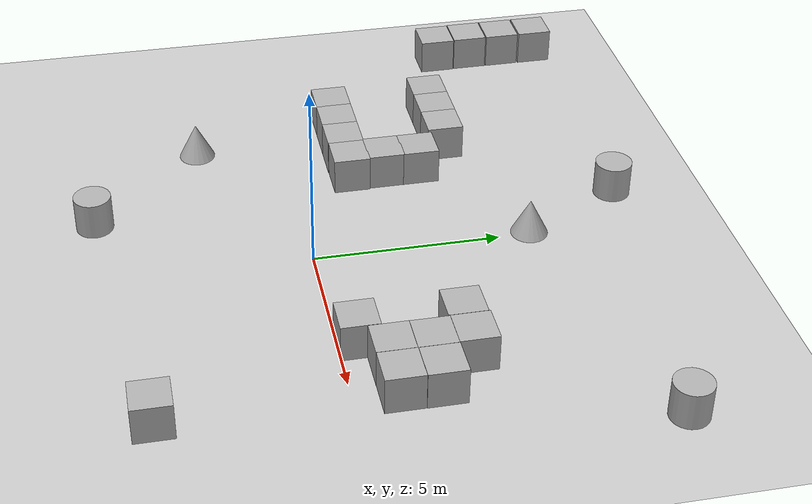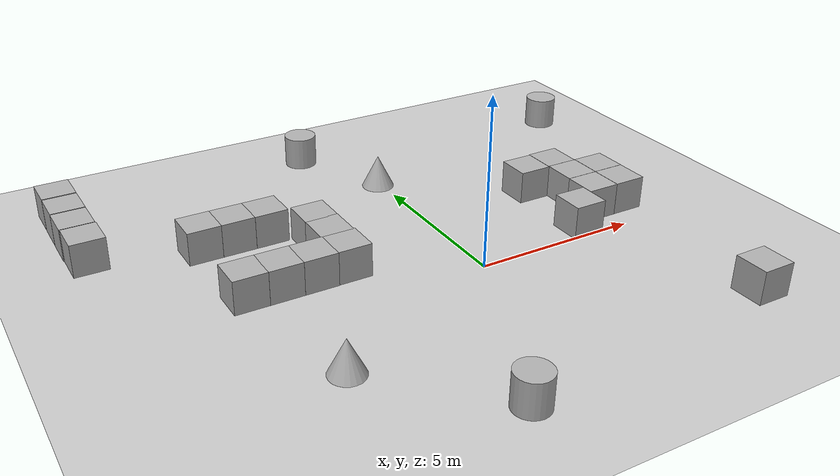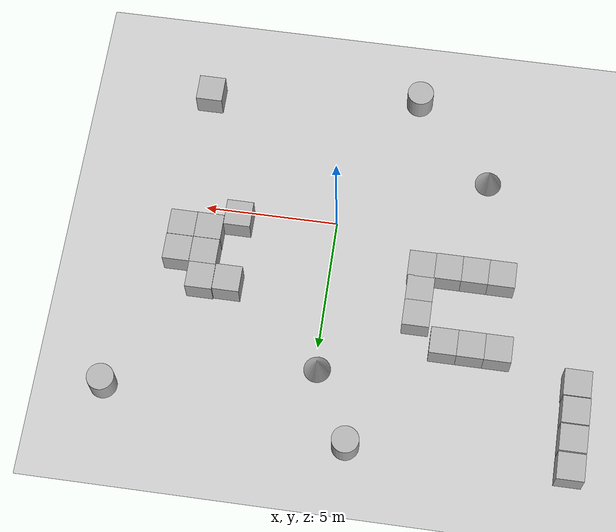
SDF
<sdf version='1.10'>
  <world name='empty'>
    <physics name='1ms' type='ignored'>
      <max_step_size>0.001</max_step_size>
      <real_time_factor>1</real_time_factor>
      <real_time_update_rate>1000</real_time_update_rate>
    </physics>

    <plugin
      filename="gz-sim-sensors-system"
      name="gz::sim::systems::Sensors">
      <render_engine>ogre2</render_engine>
    </plugin>

    <plugin
      filename="gz-sim-imu-system"
      name="gz::sim::systems::Imu">
    </plugin>

    <plugin name='gz::sim::systems::Physics' filename='gz-sim-physics-system'/>
    <plugin name='gz::sim::systems::UserCommands' filename='gz-sim-user-commands-system'/>
    <plugin name='gz::sim::systems::SceneBroadcaster' filename='gz-sim-scene-broadcaster-system'/>
    <plugin name='gz::sim::systems::Contact' filename='gz-sim-contact-system'/>
    <gravity>0 0 -9.8000000000000007</gravity>
    <magnetic_field>5.5644999999999998e-06 2.2875799999999999e-05 -4.2388400000000002e-05</magnetic_field>
    <atmosphere type='adiabatic'/>

    <scene>
      <ambient>0.400000006 0.400000006 0.400000006 1</ambient>
      <background>0.699999988 0.699999988 0.699999988 1</background>
      <shadows>true</shadows>
    </scene>
    <model name='ground_plane'>
      <static>true</static>
      <link name='link'>
        <collision name='collision'>
          <geometry>
            <plane>
              <normal>0 0 1</normal>
              <size>100 100</size>
            </plane>
          </geometry>
          <surface>
            <friction>
              <ode/>
            </friction>
            <bounce/>
            <contact/>
          </surface>
        </collision>
        <visual name='visual'>
          <geometry>
            <plane>
              <normal>0 0 1</normal>
              <size>100 100</size>
            </plane>
          </geometry>
          <material>
            <ambient>0.800000012 0.800000012 0.800000012 1</ambient>
            <diffuse>0.800000012 0.800000012 0.800000012 1</diffuse>
            <specular>0.800000012 0.800000012 0.800000012 1</specular>
          </material>
        </visual>
        <pose>0 0 0 0 0 0</pose>
        <inertial>
          <pose>0 0 0 0 0 0</pose>
          <mass>1</mass>
          <inertia>
            <ixx>1</ixx>
            <ixy>0</ixy>
            <ixz>0</ixz>
            <iyy>1</iyy>
            <iyz>0</iyz>
            <izz>1</izz>
          </inertia>
        </inertial>
        <enable_wind>false</enable_wind>
      </link>
      <pose>0 0 0 0 0 0</pose>
      <self_collide>false</self_collide>
    </model>
    <model name='box'>
      <pose>5.6495577485662576 1.1411248987016795 0.5 0 0 0</pose>
      <link name='box_link'>
        <inertial>
          <inertia>
            <ixx>0.16666</ixx>
            <ixy>0</ixy>
            <ixz>0</ixz>
            <iyy>0.16666</iyy>
            <iyz>0</iyz>
            <izz>0.16666</izz>
          </inertia>
          <mass>1</mass>
          <pose>0 0 0 0 0 0</pose>
        </inertial>
        <collision name='box_collision'>
          <geometry>
            <box>
              <size>1 1 1</size>
            </box>
          </geometry>
          <surface>
            <friction>
              <ode/>
            </friction>
            <bounce/>
            <contact/>
          </surface>
        </collision>
        <visual name='box_visual'>
          <geometry>
            <box>
              <size>1 1 1</size>
            </box>
          </geometry>
          <material>
            <ambient>0.300000012 0.300000012 0.300000012 1</ambient>
            <diffuse>0.699999988 0.699999988 0.699999988 1</diffuse>
            <specular>1 1 1 1</specular>
          </material>
        </visual>
        <pose>0 0 0 0 0 0</pose>
        <enable_wind>false</enable_wind>
      </link>
      <static>false</static>
      <self_collide>false</self_collide>
    </model>
    <model name='box_0'>
      <pose>5.5579663238386798 -4.6178165213168354 0.5 0 0 0</pose>
      <link name='box_link'>
        <inertial>
          <inertia>
            <ixx>0.16666</ixx>
            <ixy>0</ixy>
            <ixz>0</ixz>
            <iyy>0.16666</iyy>
            <iyz>0</iyz>
            <izz>0.16666</izz>
          </inertia>
          <mass>1</mass>
          <pose>0 0 0 0 0 0</pose>
        </inertial>
        <collision name='box_collision'>
          <geometry>
            <box>
              <size>1 1 1</size>
            </box>
          </geometry>
          <surface>
            <friction>
              <ode/>
            </friction>
            <bounce/>
            <contact/>
          </surface>
        </collision>
        <visual name='box_visual'>
          <geometry>
            <box>
              <size>1 1 1</size>
            </box>
          </geometry>
          <material>
            <ambient>0.300000012 0.300000012 0.300000012 1</ambient>
            <diffuse>0.699999988 0.699999988 0.699999988 1</diffuse>
            <specular>1 1 1 1</specular>
          </material>
        </visual>
        <pose>0 0 0 0 0 0</pose>
        <enable_wind>false</enable_wind>
      </link>
      <static>false</static>
      <self_collide>false</self_collide>
    </model>
    <model name='cone'>
      <pose>-0.092553137131737184 5.8529628609276942 0.5 0 0 0</pose>
      <link name='cone_link'>
        <inertial>
          <inertia>
            <ixx>0.074999999999999997</ixx>
            <ixy>0</ixy>
            <ixz>0</ixz>
            <iyy>0.074999999999999997</iyy>
            <iyz>0</iyz>
            <izz>0.074999999999999997</izz>
          </inertia>
          <mass>1</mass>
          <pose>0 0 0 0 0 0</pose>
        </inertial>
        <collision name='cone_collision'>
          <geometry>
            <cone>
              <radius>0.5</radius>
              <length>1</length>
            </cone>
          </geometry>
          <surface>
            <friction>
              <ode/>
            </friction>
            <bounce/>
            <contact/>
          </surface>
        </collision>
        <visual name='cone_visual'>
          <geometry>
            <cone>
              <radius>0.5</radius>
              <length>1</length>
            </cone>
          </geometry>
          <material>
            <ambient>0.300000012 0.300000012 0.300000012 1</ambient>
            <diffuse>0.699999988 0.699999988 0.699999988 1</diffuse>
            <specular>1 1 1 1</specular>
          </material>
        </visual>
        <pose>0 0 0 0 0 0</pose>
        <enable_wind>false</enable_wind>
      </link>
      <static>false</static>
      <self_collide>false</self_collide>
    </model>
    <model name='box_1'>
      <pose>4.6454767886542916 1.1373205098102854 0.5 0 0 0</pose>
      <link name='box_link'>
        <inertial>
          <inertia>
            <ixx>0.16666</ixx>
            <ixy>0</ixy>
            <ixz>0</ixz>
            <iyy>0.16666</iyy>
            <iyz>0</iyz>
            <izz>0.16666</izz>
          </inertia>
          <mass>1</mass>
          <pose>0 0 0 0 0 0</pose>
        </inertial>
        <collision name='box_collision'>
          <geometry>
            <box>
              <size>1 1 1</size>
            </box>
          </geometry>
          <surface>
            <friction>
              <ode/>
            </friction>
            <bounce/>
            <contact/>
          </surface>
        </collision>
        <visual name='box_visual'>
          <geometry>
            <box>
              <size>1 1 1</size>
            </box>
          </geometry>
          <material>
            <ambient>0.300000012 0.300000012 0.300000012 1</ambient>
            <diffuse>0.699999988 0.699999988 0.699999988 1</diffuse>
            <specular>1 1 1 1</specular>
          </material>
        </visual>
        <pose>0 0 0 0 0 0</pose>
        <enable_wind>false</enable_wind>
      </link>
      <static>false</static>
      <self_collide>false</self_collide>
    </model>
    <model name='box_2'>
      <pose>5.6564511481347264 2.145737704313742 0.5 0 0 0</pose>
      <link name='box_link'>
        <inertial>
          <inertia>
            <ixx>0.16666</ixx>
            <ixy>0</ixy>
            <ixz>0</ixz>
            <iyy>0.16666</iyy>
            <iyz>0</iyz>
            <izz>0.16666</izz>
          </inertia>
          <mass>1</mass>
          <pose>0 0 0 0 0 0</pose>
        </inertial>
        <collision name='box_collision'>
          <geometry>
            <box>
              <size>1 1 1</size>
            </box>
          </geometry>
          <surface>
            <friction>
              <ode/>
            </friction>
            <bounce/>
            <contact/>
          </surface>
        </collision>
        <visual name='box_visual'>
          <geometry>
            <box>
              <size>1 1 1</size>
            </box>
          </geometry>
          <material>
            <ambient>0.300000012 0.300000012 0.300000012 1</ambient>
            <diffuse>0.699999988 0.699999988 0.699999988 1</diffuse>
            <specular>1 1 1 1</specular>
          </material>
        </visual>
        <pose>0 0 0 0 0 0</pose>
        <enable_wind>false</enable_wind>
      </link>
      <static>false</static>
      <self_collide>false</self_collide>
    </model>
    <model name='box_3'>
      <pose>4.6525848246110106 2.1407320724627863 0.5 0 0 0</pose>
      <link name='box_link'>
        <inertial>
          <inertia>
            <ixx>0.16666</ixx>
            <ixy>0</ixy>
            <ixz>0</ixz>
            <iyy>0.16666</iyy>
            <iyz>0</iyz>
            <izz>0.16666</izz>
          </inertia>
          <mass>1</mass>
          <pose>0 0 0 0 0 0</pose>
        </inertial>
        <collision name='box_collision'>
          <geometry>
            <box>
              <size>1 1 1</size>
            </box>
          </geometry>
          <surface>
            <friction>
              <ode/>
            </friction>
            <bounce/>
            <contact/>
          </surface>
        </collision>
        <visual name='box_visual'>
          <geometry>
            <box>
              <size>1 1 1</size>
            </box>
          </geometry>
          <material>
            <ambient>0.300000012 0.300000012 0.300000012 1</ambient>
            <diffuse>0.699999988 0.699999988 0.699999988 1</diffuse>
            <specular>1 1 1 1</specular>
          </material>
        </visual>
        <pose>0 0 0 0 0 0</pose>
        <enable_wind>false</enable_wind>
      </link>
      <static>false</static>
      <self_collide>false</self_collide>
    </model>
    <model name='box_4'>
      <pose>4.6398629793233095 3.1416467684414733 0.5 0 0 0</pose>
      <link name='box_link'>
        <inertial>
          <inertia>
            <ixx>0.16666</ixx>
            <ixy>0</ixy>
            <ixz>0</ixz>
            <iyy>0.16666</iyy>
            <iyz>0</iyz>
            <izz>0.16666</izz>
          </inertia>
          <mass>1</mass>
          <pose>0 0 0 0 0 0</pose>
        </inertial>
        <collision name='box_collision'>
          <geometry>
            <box>
              <size>1 1 1</size>
            </box>
          </geometry>
          <surface>
            <friction>
              <ode/>
            </friction>
            <bounce/>
            <contact/>
          </surface>
        </collision>
        <visual name='box_visual'>
          <geometry>
            <box>
              <size>1 1 1</size>
            </box>
          </geometry>
          <material>
            <ambient>0.300000012 0.300000012 0.300000012 1</ambient>
            <diffuse>0.699999988 0.699999988 0.699999988 1</diffuse>
            <specular>1 1 1 1</specular>
          </material>
        </visual>
        <pose>0 0 0 0 0 0</pose>
        <enable_wind>false</enable_wind>
      </link>
      <static>false</static>
      <self_collide>false</self_collide>
    </model>
    <model name='box_5'>
      <pose>3.6340146009268897 3.1054140630819882 0.5 0 0 0</pose>
      <link name='box_link'>
        <inertial>
          <inertia>
            <ixx>0.16666</ixx>
            <ixy>0</ixy>
            <ixz>0</ixz>
            <iyy>0.16666</iyy>
            <iyz>0</iyz>
            <izz>0.16666</izz>
          </inertia>
          <mass>1</mass>
          <pose>0 0 0 0 0 0</pose>
        </inertial>
        <collision name='box_collision'>
          <geometry>
            <box>
              <size>1 1 1</size>
            </box>
          </geometry>
          <surface>
            <friction>
              <ode/>
            </friction>
            <bounce/>
            <contact/>
          </surface>
        </collision>
        <visual name='box_visual'>
          <geometry>
            <box>
              <size>1 1 1</size>
            </box>
          </geometry>
          <material>
            <ambient>0.300000012 0.300000012 0.300000012 1</ambient>
            <diffuse>0.699999988 0.699999988 0.699999988 1</diffuse>
            <specular>1 1 1 1</specular>
          </material>
        </visual>
        <pose>0 0 0 0 0 0</pose>
        <enable_wind>false</enable_wind>
      </link>
      <static>false</static>
      <self_collide>false</self_collide>
    </model>
    <model name='box_6'>
      <pose>3.637205458821227 0.47593153511430453 0.5 0 0 0</pose>
      <link name='box_link'>
        <inertial>
          <inertia>
            <ixx>0.16666</ixx>
            <ixy>0</ixy>
            <ixz>0</ixz>
            <iyy>0.16666</iyy>
            <iyz>0</iyz>
            <izz>0.16666</izz>
          </inertia>
          <mass>1</mass>
          <pose>0 0 0 0 0 0</pose>
        </inertial>
        <collision name='box_collision'>
          <geometry>
            <box>
              <size>1 1 1</size>
            </box>
          </geometry>
          <surface>
            <friction>
              <ode/>
            </friction>
            <bounce/>
            <contact/>
          </surface>
        </collision>
        <visual name='box_visual'>
          <geometry>
            <box>
              <size>1 1 1</size>
            </box>
          </geometry>
          <material>
            <ambient>0.300000012 0.300000012 0.300000012 1</ambient>
            <diffuse>0.699999988 0.699999988 0.699999988 1</diffuse>
            <specular>1 1 1 1</specular>
          </material>
        </visual>
        <pose>0 0 0 0 0 0</pose>
        <enable_wind>false</enable_wind>
      </link>
      <static>false</static>
      <self_collide>false</self_collide>
    </model>
    <model name='box_7'>
      <pose>-3.4387174518671286 2.5569144059506503 0.5 0 0 0</pose>
      <link name='box_link'>
        <inertial>
          <inertia>
            <ixx>0.16666</ixx>
            <ixy>0</ixy>
            <ixz>0</ixz>
            <iyy>0.16666</iyy>
            <iyz>0</iyz>
            <izz>0.16666</izz>
          </inertia>
          <mass>1</mass>
          <pose>0 0 0 0 0 0</pose>
        </inertial>
        <collision name='box_collision'>
          <geometry>
            <box>
              <size>1 1 1</size>
            </box>
          </geometry>
          <surface>
            <friction>
              <ode/>
            </friction>
            <bounce/>
            <contact/>
          </surface>
        </collision>
        <visual name='box_visual'>
          <geometry>
            <box>
              <size>1 1 1</size>
            </box>
          </geometry>
          <material>
            <ambient>0.300000012 0.300000012 0.300000012 1</ambient>
            <diffuse>0.699999988 0.699999988 0.699999988 1</diffuse>
            <specular>1 1 1 1</specular>
          </material>
        </visual>
        <pose>0 0 0 0 0 0</pose>
        <enable_wind>false</enable_wind>
      </link>
      <static>false</static>
      <self_collide>false</self_collide>
    </model>
    <model name='box_8'>
      <pose>-3.4011788245148784 1.5798459951489621 0.5 0 0 0</pose>
      <link name='box_link'>
        <inertial>
          <inertia>
            <ixx>0.16666</ixx>
            <ixy>0</ixy>
            <ixz>0</ixz>
            <iyy>0.16666</iyy>
            <iyz>0</iyz>
            <izz>0.16666</izz>
          </inertia>
          <mass>1</mass>
          <pose>0 0 0 0 0 0</pose>
        </inertial>
        <collision name='box_collision'>
          <geometry>
            <box>
              <size>1 1 1</size>
            </box>
          </geometry>
          <surface>
            <friction>
              <ode/>
            </friction>
            <bounce/>
            <contact/>
          </surface>
        </collision>
        <visual name='box_visual'>
          <geometry>
            <box>
              <size>1 1 1</size>
            </box>
          </geometry>
          <material>
            <ambient>0.300000012 0.300000012 0.300000012 1</ambient>
            <diffuse>0.699999988 0.699999988 0.699999988 1</diffuse>
            <specular>1 1 1 1</specular>
          </material>
        </visual>
        <pose>0 0 0 0 0 0</pose>
        <enable_wind>false</enable_wind>
      </link>
      <static>false</static>
      <self_collide>false</self_collide>
    </model>
    <model name='box_9'>
      <pose>-3.4376154153903804 3.5271595345180633 0.5 0 0 0</pose>
      <link name='box_link'>
        <inertial>
          <inertia>
            <ixx>0.16666</ixx>
            <ixy>0</ixy>
            <ixz>0</ixz>
            <iyy>0.16666</iyy>
            <iyz>0</iyz>
            <izz>0.16666</izz>
          </inertia>
          <mass>1</mass>
          <pose>0 0 0 0 0 0</pose>
        </inertial>
        <collision name='box_collision'>
          <geometry>
            <box>
              <size>1 1 1</size>
            </box>
          </geometry>
          <surface>
            <friction>
              <ode/>
            </friction>
            <bounce/>
            <contact/>
          </surface>
        </collision>
        <visual name='box_visual'>
          <geometry>
            <box>
              <size>1 1 1</size>
            </box>
          </geometry>
          <material>
            <ambient>0.300000012 0.300000012 0.300000012 1</ambient>
            <diffuse>0.699999988 0.699999988 0.699999988 1</diffuse>
            <specular>1 1 1 1</specular>
          </material>
        </visual>
        <pose>0 0 0 0 0 0</pose>
        <enable_wind>false</enable_wind>
      </link>
      <static>false</static>
      <self_collide>false</self_collide>
    </model>
    <model name='cylinder'>
      <pose>-2.5173462892546521 -5.5248149703514873 0.5 0 0 0</pose>
      <link name='cylinder_link'>
        <inertial>
          <inertia>
            <ixx>0.14580000000000001</ixx>
            <ixy>0</ixy>
            <ixz>0</ixz>
            <iyy>0.14580000000000001</iyy>
            <iyz>0</iyz>
            <izz>0.125</izz>
          </inertia>
          <mass>1</mass>
          <pose>0 0 0 0 0 0</pose>
        </inertial>
        <collision name='cylinder_collision'>
          <geometry>
            <cylinder>
              <radius>0.5</radius>
              <length>1</length>
            </cylinder>
          </geometry>
          <surface>
            <friction>
              <ode/>
            </friction>
            <bounce/>
            <contact/>
          </surface>
        </collision>
        <visual name='cylinder_visual'>
          <geometry>
            <cylinder>
              <radius>0.5</radius>
              <length>1</length>
            </cylinder>
          </geometry>
          <material>
            <ambient>0.300000012 0.300000012 0.300000012 1</ambient>
            <diffuse>0.699999988 0.699999988 0.699999988 1</diffuse>
            <specular>1 1 1 1</specular>
          </material>
        </visual>
        <pose>0 0 0 0 0 0</pose>
        <enable_wind>false</enable_wind>
      </link>
      <static>false</static>
      <self_collide>false</self_collide>
    </model>
    <model name='box_10'>
      <pose>-9.4792095604952227 8.4973250894984211 0.5 0 0 0</pose>
      <link name='box_link'>
        <inertial>
          <inertia>
            <ixx>0.16666</ixx>
            <ixy>0</ixy>
            <ixz>0</ixz>
            <iyy>0.16666</iyy>
            <iyz>0</iyz>
            <izz>0.16666</izz>
          </inertia>
          <mass>1</mass>
          <pose>0 0 0 0 0 0</pose>
        </inertial>
        <collision name='box_collision'>
          <geometry>
            <box>
              <size>1 1 1</size>
            </box>
          </geometry>
          <surface>
            <friction>
              <ode/>
            </friction>
            <bounce/>
            <contact/>
          </surface>
        </collision>
        <visual name='box_visual'>
          <geometry>
            <box>
              <size>1 1 1</size>
            </box>
          </geometry>
          <material>
            <ambient>0.300000012 0.300000012 0.300000012 1</ambient>
            <diffuse>0.699999988 0.699999988 0.699999988 1</diffuse>
            <specular>1 1 1 1</specular>
          </material>
        </visual>
        <pose>0 0 0 0 0 0</pose>
        <enable_wind>false</enable_wind>
      </link>
      <static>false</static>
      <self_collide>false</self_collide>
    </model>
    <model name='box_11'>
      <pose>-9.483150920263272 7.453393392745185 0.5 0 0 0</pose>
      <link name='box_link'>
        <inertial>
          <inertia>
            <ixx>0.16666</ixx>
            <ixy>0</ixy>
            <ixz>0</ixz>
            <iyy>0.16666</iyy>
            <iyz>0</iyz>
            <izz>0.16666</izz>
          </inertia>
          <mass>1</mass>
          <pose>0 0 0 0 0 0</pose>
        </inertial>
        <collision name='box_collision'>
          <geometry>
            <box>
              <size>1 1 1</size>
            </box>
          </geometry>
          <surface>
            <friction>
              <ode/>
            </friction>
            <bounce/>
            <contact/>
          </surface>
        </collision>
        <visual name='box_visual'>
          <geometry>
            <box>
              <size>1 1 1</size>
            </box>
          </geometry>
          <material>
            <ambient>0.300000012 0.300000012 0.300000012 1</ambient>
            <diffuse>0.699999988 0.699999988 0.699999988 1</diffuse>
            <specular>1 1 1 1</specular>
          </material>
        </visual>
        <pose>0 0 0 0 0 0</pose>
        <enable_wind>false</enable_wind>
      </link>
      <static>false</static>
      <self_collide>false</self_collide>
    </model>
    <model name='box_12'>
      <pose>-9.485977313548954 6.420906412055408 0.5 0 0 0</pose>
      <link name='box_link'>
        <inertial>
          <inertia>
            <ixx>0.16666</ixx>
            <ixy>0</ixy>
            <ixz>0</ixz>
            <iyy>0.16666</iyy>
            <iyz>0</iyz>
            <izz>0.16666</izz>
          </inertia>
          <mass>1</mass>
          <pose>0 0 0 0 0 0</pose>
        </inertial>
        <collision name='box_collision'>
          <geometry>
            <box>
              <size>1 1 1</size>
            </box>
          </geometry>
          <surface>
            <friction>
              <ode/>
            </friction>
            <bounce/>
            <contact/>
          </surface>
        </collision>
        <visual name='box_visual'>
          <geometry>
            <box>
              <size>1 1 1</size>
            </box>
          </geometry>
          <material>
            <ambient>0.300000012 0.300000012 0.300000012 1</ambient>
            <diffuse>0.699999988 0.699999988 0.699999988 1</diffuse>
            <specular>1 1 1 1</specular>
          </material>
        </visual>
        <pose>0 0 0 0 0 0</pose>
        <enable_wind>false</enable_wind>
      </link>
      <static>false</static>
      <self_collide>false</self_collide>
    </model>
    <model name='box_13'>
      <pose>-9.4658900675793092 5.3975607534477987 0.5 0 0 0</pose>
      <link name='box_link'>
        <inertial>
          <inertia>
            <ixx>0.16666</ixx>
            <ixy>0</ixy>
            <ixz>0</ixz>
            <iyy>0.16666</iyy>
            <iyz>0</iyz>
            <izz>0.16666</izz>
          </inertia>
          <mass>1</mass>
          <pose>0 0 0 0 0 0</pose>
        </inertial>
        <collision name='box_collision'>
          <geometry>
            <box>
              <size>1 1 1</size>
            </box>
          </geometry>
          <surface>
            <friction>
              <ode/>
            </friction>
            <bounce/>
            <contact/>
          </surface>
        </collision>
        <visual name='box_visual'>
          <geometry>
            <box>
              <size>1 1 1</size>
            </box>
          </geometry>
          <material>
            <ambient>0.300000012 0.300000012 0.300000012 1</ambient>
            <diffuse>0.699999988 0.699999988 0.699999988 1</diffuse>
            <specular>1 1 1 1</specular>
          </material>
        </visual>
        <pose>0 0 0 0 0 0</pose>
        <enable_wind>false</enable_wind>
      </link>
      <static>false</static>
      <self_collide>false</self_collide>
    </model>
    <model name='box_14'>
      <pose>-4.5351436657299846 4.4741881694657426 0.5 0 0 0</pose>
      <link name='box_link'>
        <inertial>
          <inertia>
            <ixx>0.16666</ixx>
            <ixy>0</ixy>
            <ixz>0</ixz>
            <iyy>0.16666</iyy>
            <iyz>0</iyz>
            <izz>0.16666</izz>
          </inertia>
          <mass>1</mass>
          <pose>0 0 0 0 0 0</pose>
        </inertial>
        <collision name='box_collision'>
          <geometry>
            <box>
              <size>1 1 1</size>
            </box>
          </geometry>
          <surface>
            <friction>
              <ode/>
            </friction>
            <bounce/>
            <contact/>
          </surface>
        </collision>
        <visual name='box_visual'>
          <geometry>
            <box>
              <size>1 1 1</size>
            </box>
          </geometry>
          <material>
            <ambient>0.300000012 0.300000012 0.300000012 1</ambient>
            <diffuse>0.699999988 0.699999988 0.699999988 1</diffuse>
            <specular>1 1 1 1</specular>
          </material>
        </visual>
        <pose>0 0 0 0 0 0</pose>
        <enable_wind>false</enable_wind>
      </link>
      <static>false</static>
      <self_collide>false</self_collide>
    </model>
    <model name='box_15'>
      <pose>-5.5353403091430664 4.4756097793579102 0.5 0 0 0</pose>
      <link name='box_link'>
        <inertial>
          <inertia>
            <ixx>0.16666</ixx>
            <ixy>0</ixy>
            <ixz>0</ixz>
            <iyy>0.16666</iyy>
            <iyz>0</iyz>
            <izz>0.16666</izz>
          </inertia>
          <mass>1</mass>
          <pose>0 0 0 0 0 0</pose>
        </inertial>
        <collision name='box_collision'>
          <geometry>
            <box>
              <size>1 1 1</size>
            </box>
          </geometry>
          <surface>
            <friction>
              <ode/>
            </friction>
            <bounce/>
            <contact/>
          </surface>
        </collision>
        <visual name='box_visual'>
          <geometry>
            <box>
              <size>1 1 1</size>
            </box>
          </geometry>
          <material>
            <ambient>0.300000012 0.300000012 0.300000012 1</ambient>
            <diffuse>0.699999988 0.699999988 0.699999988 1</diffuse>
            <specular>1 1 1 1</specular>
          </material>
        </visual>
        <pose>0 0 0 0 0 0</pose>
        <enable_wind>false</enable_wind>
      </link>
      <static>false</static>
      <self_collide>false</self_collide>
    </model>
    <model name='box_16'>
      <pose>-6.525331974029541 4.4769701957702637 0.5 0 0 0</pose>
      <link name='box_link'>
        <inertial>
          <inertia>
            <ixx>0.16666</ixx>
            <ixy>0</ixy>
            <ixz>0</ixz>
            <iyy>0.16666</iyy>
            <iyz>0</iyz>
            <izz>0.16666</izz>
          </inertia>
          <mass>1</mass>
          <pose>0 0 0 0 0 0</pose>
        </inertial>
        <collision name='box_collision'>
          <geometry>
            <box>
              <size>1 1 1</size>
            </box>
          </geometry>
          <surface>
            <friction>
              <ode/>
            </friction>
            <bounce/>
            <contact/>
          </surface>
        </collision>
        <visual name='box_visual'>
          <geometry>
            <box>
              <size>1 1 1</size>
            </box>
          </geometry>
          <material>
            <ambient>0.300000012 0.300000012 0.300000012 1</ambient>
            <diffuse>0.699999988 0.699999988 0.699999988 1</diffuse>
            <specular>1 1 1 1</specular>
          </material>
        </visual>
        <pose>0 0 0 0 0 0</pose>
        <enable_wind>false</enable_wind>
      </link>
      <static>false</static>
      <self_collide>false</self_collide>
    </model>
    <model name='box_17'>
      <pose>-4.3990380187664808 1.5693303314993345 0.5 0 0 0</pose>
      <link name='box_link'>
        <inertial>
          <inertia>
            <ixx>0.16666</ixx>
            <ixy>0</ixy>
            <ixz>0</ixz>
            <iyy>0.16666</iyy>
            <iyz>0</iyz>
            <izz>0.16666</izz>
          </inertia>
          <mass>1</mass>
          <pose>0 0 0 0 0 0</pose>
        </inertial>
        <collision name='box_collision'>
          <geometry>
            <box>
              <size>1 1 1</size>
            </box>
          </geometry>
          <surface>
            <friction>
              <ode/>
            </friction>
            <bounce/>
            <contact/>
          </surface>
        </collision>
        <visual name='box_visual'>
          <geometry>
            <box>
              <size>1 1 1</size>
            </box>
          </geometry>
          <material>
            <ambient>0.300000012 0.300000012 0.300000012 1</ambient>
            <diffuse>0.699999988 0.699999988 0.699999988 1</diffuse>
            <specular>1 1 1 1</specular>
          </material>
        </visual>
        <pose>0 0 0 0 0 0</pose>
        <enable_wind>false</enable_wind>
      </link>
      <static>false</static>
      <self_collide>false</self_collide>
    </model>
    <model name='box_18'>
      <pose>-5.3914765953738426 1.5701769100765979 0.5 0 0 0</pose>
      <link name='box_link'>
        <inertial>
          <inertia>
            <ixx>0.16666</ixx>
            <ixy>0</ixy>
            <ixz>0</ixz>
            <iyy>0.16666</iyy>
            <iyz>0</iyz>
            <izz>0.16666</izz>
          </inertia>
          <mass>1</mass>
          <pose>0 0 0 0 0 0</pose>
        </inertial>
        <collision name='box_collision'>
          <geometry>
            <box>
              <size>1 1 1</size>
            </box>
          </geometry>
          <surface>
            <friction>
              <ode/>
            </friction>
            <bounce/>
            <contact/>
          </surface>
        </collision>
        <visual name='box_visual'>
          <geometry>
            <box>
              <size>1 1 1</size>
            </box>
          </geometry>
          <material>
            <ambient>0.300000012 0.300000012 0.300000012 1</ambient>
            <diffuse>0.699999988 0.699999988 0.699999988 1</diffuse>
            <specular>1 1 1 1</specular>
          </material>
        </visual>
        <pose>0 0 0 0 0 0</pose>
        <enable_wind>false</enable_wind>
      </link>
      <static>false</static>
      <self_collide>false</self_collide>
    </model>
    <model name='box_19'>
      <pose>-6.381973140122831 1.5718956993776878 0.5 0 0 0</pose>
      <link name='box_link'>
        <inertial>
          <inertia>
            <ixx>0.16666</ixx>
            <ixy>0</ixy>
            <ixz>0</ixz>
            <iyy>0.16666</iyy>
            <iyz>0</iyz>
            <izz>0.16666</izz>
          </inertia>
          <mass>1</mass>
          <pose>0 0 0 0 0 0</pose>
        </inertial>
        <collision name='box_collision'>
          <geometry>
            <box>
              <size>1 1 1</size>
            </box>
          </geometry>
          <surface>
            <friction>
              <ode/>
            </friction>
            <bounce/>
            <contact/>
          </surface>
        </collision>
        <visual name='box_visual'>
          <geometry>
            <box>
              <size>1 1 1</size>
            </box>
          </geometry>
          <material>
            <ambient>0.300000012 0.300000012 0.300000012 1</ambient>
            <diffuse>0.699999988 0.699999988 0.699999988 1</diffuse>
            <specular>1 1 1 1</specular>
          </material>
        </visual>
        <pose>0 0 0 0 0 0</pose>
        <enable_wind>false</enable_wind>
      </link>
      <static>false</static>
      <self_collide>false</self_collide>
    </model>
    <model name='cone_0'>
      <pose>-5.5165163048950809 -2.4747706608138755 0.5 0 0 0</pose>
      <link name='cone_link'>
        <inertial>
          <inertia>
            <ixx>0.074999999999999997</ixx>
            <ixy>0</ixy>
            <ixz>0</ixz>
            <iyy>0.074999999999999997</iyy>
            <iyz>0</iyz>
            <izz>0.074999999999999997</izz>
          </inertia>
          <mass>1</mass>
          <pose>0 0 0 0 0 0</pose>
        </inertial>
        <collision name='cone_collision'>
          <geometry>
            <cone>
              <radius>0.5</radius>
              <length>1</length>
            </cone>
          </geometry>
          <surface>
            <friction>
              <ode/>
            </friction>
            <bounce/>
            <contact/>
          </surface>
        </collision>
        <visual name='cone_visual'>
          <geometry>
            <cone>
              <radius>0.5</radius>
              <length>1</length>
            </cone>
          </geometry>
          <material>
            <ambient>0.300000012 0.300000012 0.300000012 1</ambient>
            <diffuse>0.699999988 0.699999988 0.699999988 1</diffuse>
            <specular>1 1 1 1</specular>
          </material>
        </visual>
        <pose>0 0 0 0 0 0</pose>
        <enable_wind>false</enable_wind>
      </link>
      <static>false</static>
      <self_collide>false</self_collide>
    </model>
    <model name='cylinder_0'>
      <pose>7.5175802195592656 7.5023855522074161 0.5 0 0 0</pose>
      <link name='cylinder_link'>
        <inertial>
          <inertia>
            <ixx>0.14580000000000001</ixx>
            <ixy>0</ixy>
            <ixz>0</ixz>
            <iyy>0.14580000000000001</iyy>
            <iyz>0</iyz>
            <izz>0.125</izz>
          </inertia>
          <mass>1</mass>
          <pose>0 0 0 0 0 0</pose>
        </inertial>
        <collision name='cylinder_collision'>
          <geometry>
            <cylinder>
              <radius>0.5</radius>
              <length>1</length>
            </cylinder>
          </geometry>
          <surface>
            <friction>
              <ode/>
            </friction>
            <bounce/>
            <contact/>
          </surface>
        </collision>
        <visual name='cylinder_visual'>
          <geometry>
            <cylinder>
              <radius>0.5</radius>
              <length>1</length>
            </cylinder>
          </geometry>
          <material>
            <ambient>0.300000012 0.300000012 0.300000012 1</ambient>
            <diffuse>0.699999988 0.699999988 0.699999988 1</diffuse>
            <specular>1 1 1 1</specular>
          </material>
        </visual>
        <pose>0 0 0 0 0 0</pose>
        <enable_wind>false</enable_wind>
      </link>
      <static>false</static>
      <self_collide>false</self_collide>
    </model>
    <model name='cylinder_1'>
      <pose>-1.4993205110870496 8.6067251896624075 0.5 0 0 0</pose>
      <link name='cylinder_link'>
        <inertial>
          <inertia>
            <ixx>0.14580000000000001</ixx>
            <ixy>0</ixy>
            <ixz>0</ixz>
            <iyy>0.14580000000000001</iyy>
            <iyz>0</iyz>
            <izz>0.125</izz>
          </inertia>
          <mass>1</mass>
          <pose>0 0 0 0 0 0</pose>
        </inertial>
        <collision name='cylinder_collision'>
          <geometry>
            <cylinder>
              <radius>0.5</radius>
              <length>1</length>
            </cylinder>
          </geometry>
          <surface>
            <friction>
              <ode/>
            </friction>
            <bounce/>
            <contact/>
          </surface>
        </collision>
        <visual name='cylinder_visual'>
          <geometry>
            <cylinder>
              <radius>0.5</radius>
              <length>1</length>
            </cylinder>
          </geometry>
          <material>
            <ambient>0.300000012 0.300000012 0.300000012 1</ambient>
            <diffuse>0.699999988 0.699999988 0.699999988 1</diffuse>
            <specular>1 1 1 1</specular>
          </material>
        </visual>
        <pose>0 0 0 0 0 0</pose>
        <enable_wind>false</enable_wind>
      </link>
      <static>false</static>
      <self_collide>false</self_collide>
    </model>
    <light name='sun' type='directional'>
      <pose>0 0 10 0 0 0</pose>
      <cast_shadows>true</cast_shadows>
      <intensity>1</intensity>
      <direction>-0.5 0.10000000000000001 -0.90000000000000002</direction>
      <diffuse>0.800000012 0.800000012 0.800000012 1</diffuse>
      <specular>0.200000003 0.200000003 0.200000003 1</specular>
      <attenuation>
        <range>1000</range>
        <linear>0.01</linear>
        <constant>0.90000000000000002</constant>
        <quadratic>0.001</quadratic>
      </attenuation>
      <spot>
        <inner_angle>0</inner_angle>
        <outer_angle>0</outer_angle>
        <falloff>0</falloff>
      </spot>
    </light>
  </world>
</sdf>
